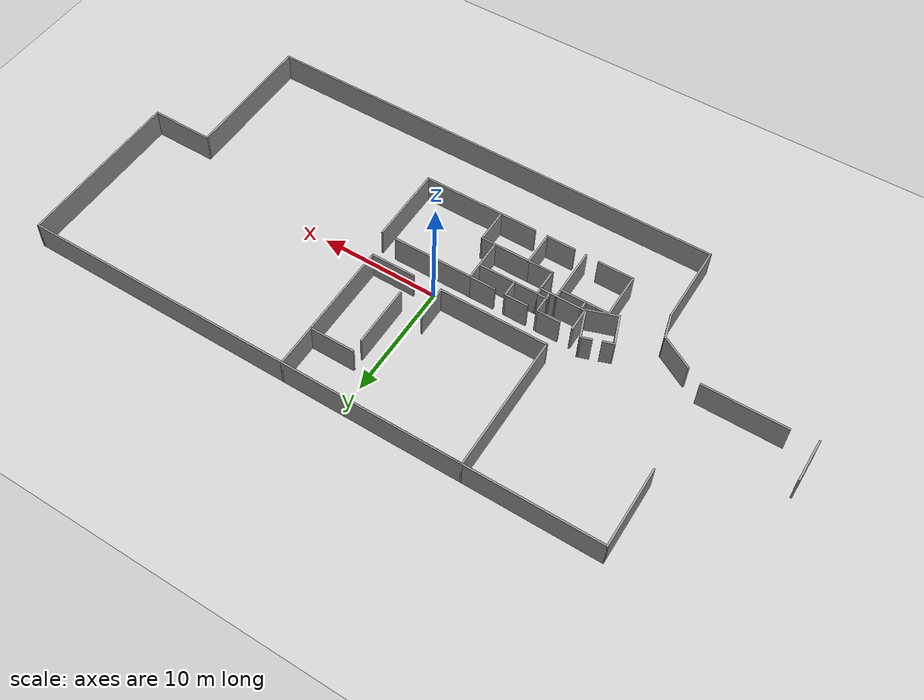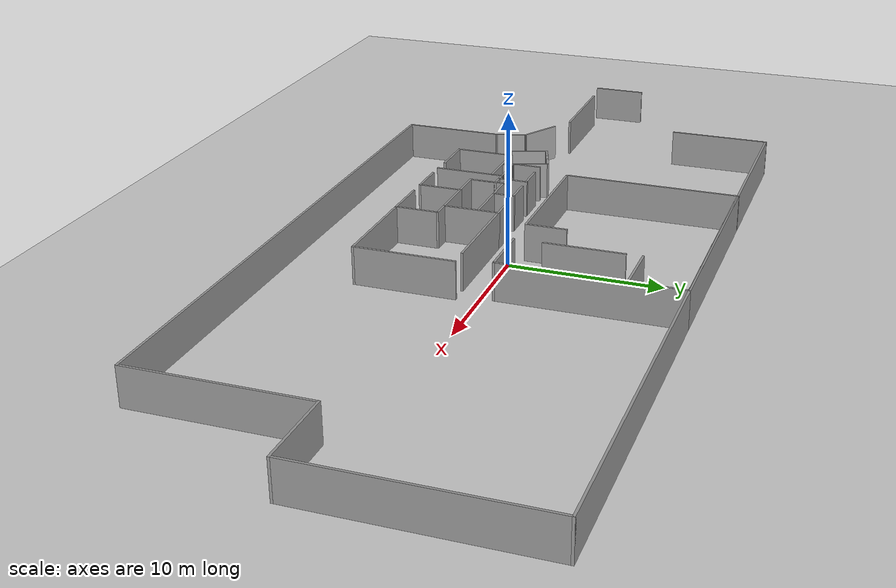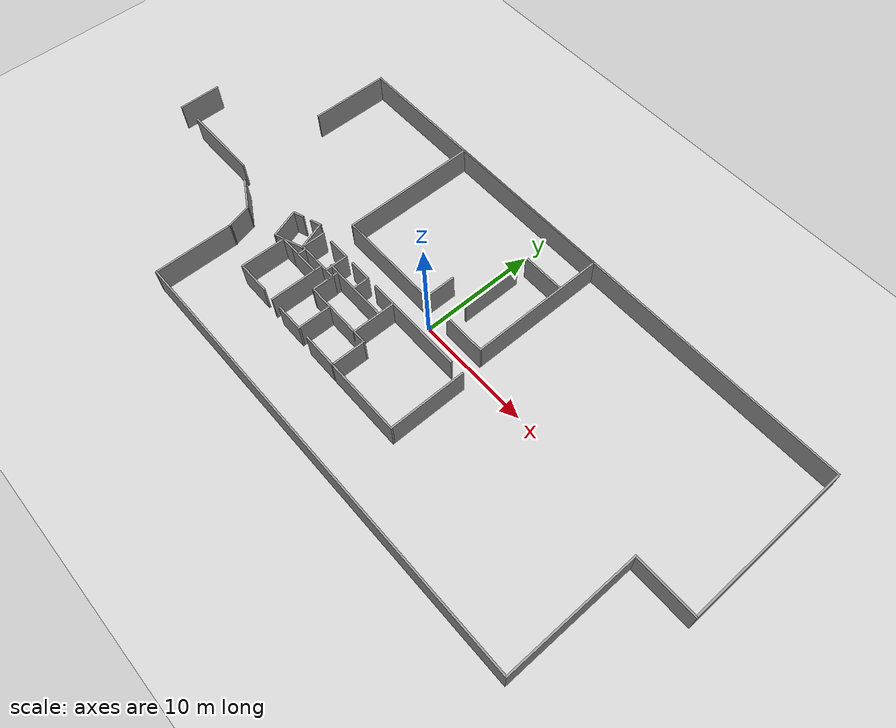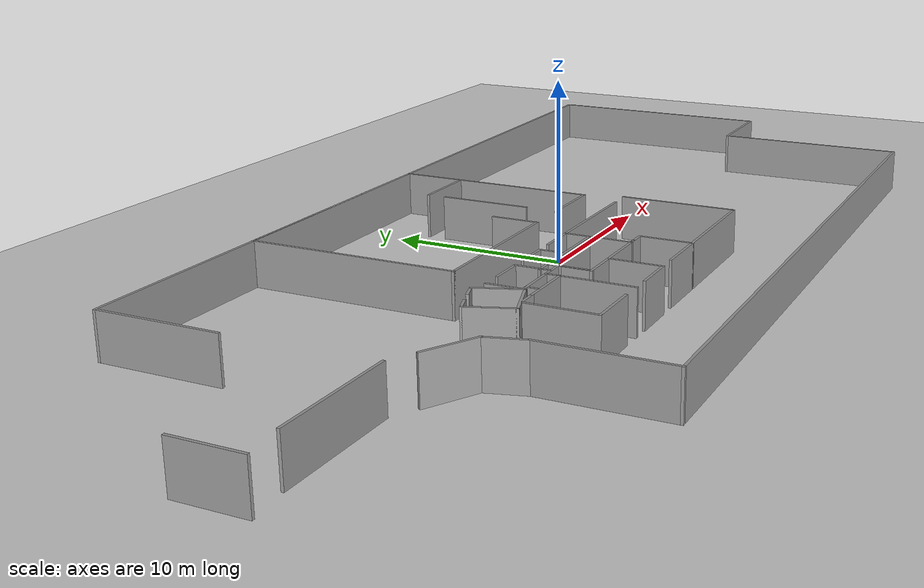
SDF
<sdf version="1.6">
 <world name="default">
  <model name="ground_plane">
   <static>1</static>
   <link name="link">
    <collision name="collision">
     <geometry><plane><normal>0 0 1</normal><size>100 100</size></plane></geometry>
     <surface><friction><ode><mu>100</mu><mu2>50</mu2></ode></friction></surface>
    </collision>
    <visual name="visual">
     <cast_shadows>0</cast_shadows>
     <geometry><plane><normal>0 0 1</normal><size>100 100</size></plane></geometry>
     <material>
      <script><uri>file://media/materials/scripts/gazebo.material</uri><name>Gazebo/Grey</name></script>
     </material>
    </visual>
   </link>
  </model>
  <model name="Floor3Perimeter">
   <link name="Wall_0">
    <pose>-20.4275 9.45 0 0 -0 1.5708</pose>
    <visual name="Wall_0_Visual">
     <pose>0 0 1.25 0 -0 0</pose>
     <geometry><box><size>6.858 0.15 2.5</size></box></geometry>
     <material>
      <script><uri>file://media/materials/scripts/gazebo.material</uri><name>Gazebo/Grey</name></script>
      <ambient>1 1 1 1</ambient>
      <shader type="pixel"/>
     </material>
     <meta><layer>0</layer></meta>
    </visual>
    <collision name="Wall_0_Collision">
     <pose>0 0 1.25 0 -0 0</pose>
     <geometry><box><size>6.858 0.15 2.5</size></box></geometry>
     <surface>
      <friction>
       <ode><mu>1</mu><mu2>1</mu2><fdir1>0 0 0</fdir1><slip1>0</slip1><slip2>0</slip2></ode>
       <torsional>
        <coefficient>1</coefficient>
        <patch_radius>0</patch_radius>
        <surface_radius>0</surface_radius>
        <use_patch_radius>1</use_patch_radius>
        <ode><slip>0</slip></ode>
       </torsional>
      </friction>
      <bounce><restitution_coefficient>0</restitution_coefficient><threshold>1e+06</threshold></bounce>
      <contact>
       <collide_without_contact>0</collide_without_contact>
       <collide_without_contact_bitmask>1</collide_without_contact_bitmask>
       <collide_bitmask>1</collide_bitmask>
       <ode>
        <soft_cfm>0</soft_cfm>
        <soft_erp>0.2</soft_erp>
        <kp>1e+13</kp>
        <kd>1</kd>
        <max_vel>0.01</max_vel>
        <min_depth>0</min_depth>
       </ode>
       <bullet>
        <split_impulse>1</split_impulse>
        <split_impulse_penetration_threshold>-0.01</split_impulse_penetration_threshold>
        <soft_cfm>0</soft_cfm>
        <soft_erp>0.2</soft_erp>
        <kp>1e+13</kp>
        <kd>1</kd>
       </bullet>
      </contact>
     </surface>
    </collision>
   </link>
   <link name="Wall_1">
    <pose>4.26245 12.804 0 0 -0 0</pose>
    <visual name="Wall_1_Visual">
     <pose>0 0 1.25 0 -0 0</pose>
     <geometry><box><size>49.53 0.15 2.5</size></box></geometry>
     <material>
      <script><uri>file://media/materials/scripts/gazebo.material</uri><name>Gazebo/Grey</name></script>
      <ambient>1 1 1 1</ambient>
      <shader type="pixel"/>
     </material>
     <meta><layer>0</layer></meta>
    </visual>
    <collision name="Wall_1_Collision">
     <pose>0 0 1.25 0 -0 0</pose>
     <geometry><box><size>49.53 0.15 2.5</size></box></geometry>
     <surface>
      <friction>
       <ode><mu>1</mu><mu2>1</mu2><fdir1>0 0 0</fdir1><slip1>0</slip1><slip2>0</slip2></ode>
       <torsional>
        <coefficient>1</coefficient>
        <patch_radius>0</patch_radius>
        <surface_radius>0</surface_radius>
        <use_patch_radius>1</use_patch_radius>
        <ode><slip>0</slip></ode>
       </torsional>
      </friction>
      <bounce><restitution_coefficient>0</restitution_coefficient><threshold>1e+06</threshold></bounce>
      <contact>
       <collide_without_contact>0</collide_without_contact>
       <collide_without_contact_bitmask>1</collide_without_contact_bitmask>
       <collide_bitmask>1</collide_bitmask>
       <ode>
        <soft_cfm>0</soft_cfm>
        <soft_erp>0.2</soft_erp>
        <kp>1e+13</kp>
        <kd>1</kd>
        <max_vel>0.01</max_vel>
        <min_depth>0</min_depth>
       </ode>
       <bullet>
        <split_impulse>1</split_impulse>
        <split_impulse_penetration_threshold>-0.01</split_impulse_penetration_threshold>
        <soft_cfm>0</soft_cfm>
        <soft_erp>0.2</soft_erp>
        <kp>1e+13</kp>
        <kd>1</kd>
       </bullet>
      </contact>
     </surface>
    </collision>
   </link>
   <link name="Wall_10">
    <pose>-23.4985 -1.81856 0 0 -0 3.14159</pose>
    <visual name="Wall_10_Visual">
     <pose>0 0 1.25 0 -0 0</pose>
     <geometry><box><size>6.858 0.15 2.5</size></box></geometry>
     <material>
      <script><uri>file://media/materials/scripts/gazebo.material</uri><name>Gazebo/Grey</name></script>
      <ambient>1 1 1 1</ambient>
      <shader type="pixel"/>
     </material>
     <meta><layer>0</layer></meta>
    </visual>
    <collision name="Wall_10_Collision">
     <pose>0 0 1.25 0 -0 0</pose>
     <geometry><box><size>6.858 0.15 2.5</size></box></geometry>
     <surface>
      <friction>
       <ode><mu>1</mu><mu2>1</mu2><fdir1>0 0 0</fdir1><slip1>0</slip1><slip2>0</slip2></ode>
       <torsional>
        <coefficient>1</coefficient>
        <patch_radius>0</patch_radius>
        <surface_radius>0</surface_radius>
        <use_patch_radius>1</use_patch_radius>
        <ode><slip>0</slip></ode>
       </torsional>
      </friction>
      <bounce><restitution_coefficient>0</restitution_coefficient><threshold>1e+06</threshold></bounce>
      <contact>
       <collide_without_contact>0</collide_without_contact>
       <collide_without_contact_bitmask>1</collide_without_contact_bitmask>
       <collide_bitmask>1</collide_bitmask>
       <ode>
        <soft_cfm>0</soft_cfm>
        <soft_erp>0.2</soft_erp>
        <kp>1e+13</kp>
        <kd>1</kd>
        <max_vel>0.01</max_vel>
        <min_depth>0</min_depth>
       </ode>
       <bullet>
        <split_impulse>1</split_impulse>
        <split_impulse_penetration_threshold>-0.01</split_impulse_penetration_threshold>
        <soft_cfm>0</soft_cfm>
        <soft_erp>0.2</soft_erp>
        <kp>1e+13</kp>
        <kd>1</kd>
       </bullet>
      </contact>
     </surface>
    </collision>
   </link>
   <link name="Wall_14">
    <pose>-28.9525 -0.282482 0 0 -0 1.5708</pose>
    <inertial>
     <inertia><ixx>0</ixx><ixy>0</ixy><ixz>0</ixz><iyy>0</iyy><iyz>0</iyz><izz>0</izz></inertia>
     <mass>0</mass>
    </inertial>
    <visual name="Wall_14_Visual">
     <pose>0 0 1.25 0 -0 0</pose>
     <geometry><box><size>3.66308 0.15 2.5</size></box></geometry>
     <material>
      <script><uri>file://media/materials/scripts/gazebo.material</uri><name>Gazebo/Grey</name></script>
      <ambient>1 1 1 1</ambient>
      <shader type="pixel"/>
     </material>
     <meta><layer>0</layer></meta>
    </visual>
    <collision name="Wall_14_Collision">
     <pose>0 0 1.25 0 -0 0</pose>
     <geometry><box><size>3.66308 0.15 2.5</size></box></geometry>
     <surface>
      <friction>
       <ode><mu>1</mu><mu2>1</mu2><fdir1>0 0 0</fdir1><slip1>0</slip1><slip2>0</slip2></ode>
       <torsional>
        <coefficient>1</coefficient>
        <patch_radius>0</patch_radius>
        <surface_radius>0</surface_radius>
        <use_patch_radius>1</use_patch_radius>
        <ode><slip>0</slip></ode>
       </torsional>
      </friction>
      <bounce><restitution_coefficient>0</restitution_coefficient><threshold>1e+06</threshold></bounce>
      <contact>
       <collide_without_contact>0</collide_without_contact>
       <collide_without_contact_bitmask>1</collide_without_contact_bitmask>
       <collide_bitmask>1</collide_bitmask>
       <ode>
        <soft_cfm>0</soft_cfm>
        <soft_erp>0.2</soft_erp>
        <kp>1e+13</kp>
        <kd>1</kd>
        <max_vel>0.01</max_vel>
        <min_depth>0</min_depth>
       </ode>
       <bullet>
        <split_impulse>1</split_impulse>
        <split_impulse_penetration_threshold>-0.01</split_impulse_penetration_threshold>
        <soft_cfm>0</soft_cfm>
        <soft_erp>0.2</soft_erp>
        <kp>1e+13</kp>
        <kd>1</kd>
       </bullet>
      </contact>
     </surface>
    </collision>
   </link>
   <link name="Wall_2">
    <pose>28.9524 5.64 0 0 0 -1.5708</pose>
    <visual name="Wall_2_Visual">
     <pose>0 0 1.25 0 -0 0</pose>
     <geometry><box><size>14.478 0.15 2.5</size></box></geometry>
     <material>
      <script><uri>file://media/materials/scripts/gazebo.material</uri><name>Gazebo/Grey</name></script>
      <ambient>1 1 1 1</ambient>
      <shader type="pixel"/>
     </material>
     <meta><layer>0</layer></meta>
    </visual>
    <collision name="Wall_2_Collision">
     <pose>0 0 1.25 0 -0 0</pose>
     <geometry><box><size>14.478 0.15 2.5</size></box></geometry>
     <surface>
      <friction>
       <ode><mu>1</mu><mu2>1</mu2><fdir1>0 0 0</fdir1><slip1>0</slip1><slip2>0</slip2></ode>
       <torsional>
        <coefficient>1</coefficient>
        <patch_radius>0</patch_radius>
        <surface_radius>0</surface_radius>
        <use_patch_radius>1</use_patch_radius>
        <ode><slip>0</slip></ode>
       </torsional>
      </friction>
      <bounce><restitution_coefficient>0</restitution_coefficient><threshold>1e+06</threshold></bounce>
      <contact>
       <collide_without_contact>0</collide_without_contact>
       <collide_without_contact_bitmask>1</collide_without_contact_bitmask>
       <collide_bitmask>1</collide_bitmask>
       <ode>
        <soft_cfm>0</soft_cfm>
        <soft_erp>0.2</soft_erp>
        <kp>1e+13</kp>
        <kd>1</kd>
        <max_vel>0.01</max_vel>
        <min_depth>0</min_depth>
       </ode>
       <bullet>
        <split_impulse>1</split_impulse>
        <split_impulse_penetration_threshold>-0.01</split_impulse_penetration_threshold>
        <soft_cfm>0</soft_cfm>
        <soft_erp>0.2</soft_erp>
        <kp>1e+13</kp>
        <kd>1</kd>
       </bullet>
      </contact>
     </surface>
    </collision>
   </link>
   <link name="Wall_3">
    <pose>26.3605 -1.524 0 0 -0 3.14159</pose>
    <visual name="Wall_3_Visual">
     <pose>0 0 1.25 0 -0 0</pose>
     <geometry><box><size>5.334 0.15 2.5</size></box></geometry>
     <material>
      <script><uri>file://media/materials/scripts/gazebo.material</uri><name>Gazebo/Grey</name></script>
      <ambient>1 1 1 1</ambient>
      <shader type="pixel"/>
     </material>
     <meta><layer>0</layer></meta>
    </visual>
    <collision name="Wall_3_Collision">
     <pose>0 0 1.25 0 -0 0</pose>
     <geometry><box><size>5.334 0.15 2.5</size></box></geometry>
     <surface>
      <friction>
       <ode><mu>1</mu><mu2>1</mu2><fdir1>0 0 0</fdir1><slip1>0</slip1><slip2>0</slip2></ode>
       <torsional>
        <coefficient>1</coefficient>
        <patch_radius>0</patch_radius>
        <surface_radius>0</surface_radius>
        <use_patch_radius>1</use_patch_radius>
        <ode><slip>0</slip></ode>
       </torsional>
      </friction>
      <bounce><restitution_coefficient>0</restitution_coefficient><threshold>1e+06</threshold></bounce>
      <contact>
       <collide_without_contact>0</collide_without_contact>
       <collide_without_contact_bitmask>1</collide_without_contact_bitmask>
       <collide_bitmask>1</collide_bitmask>
       <ode>
        <soft_cfm>0</soft_cfm>
        <soft_erp>0.2</soft_erp>
        <kp>1e+13</kp>
        <kd>1</kd>
        <max_vel>0.01</max_vel>
        <min_depth>0</min_depth>
       </ode>
       <bullet>
        <split_impulse>1</split_impulse>
        <split_impulse_penetration_threshold>-0.01</split_impulse_penetration_threshold>
        <soft_cfm>0</soft_cfm>
        <soft_erp>0.2</soft_erp>
        <kp>1e+13</kp>
        <kd>1</kd>
       </bullet>
      </contact>
     </surface>
    </collision>
   </link>
   <link name="Wall_4">
    <pose>23.7685 -7.164 0 0 0 -1.5708</pose>
    <visual name="Wall_4_Visual">
     <pose>0 0 1.25 0 -0 0</pose>
     <geometry><box><size>11.43 0.15 2.5</size></box></geometry>
     <material>
      <script><uri>file://media/materials/scripts/gazebo.material</uri><name>Gazebo/Grey</name></script>
      <ambient>1 1 1 1</ambient>
      <shader type="pixel"/>
     </material>
     <meta><layer>0</layer></meta>
    </visual>
    <collision name="Wall_4_Collision">
     <pose>0 0 1.25 0 -0 0</pose>
     <geometry><box><size>11.43 0.15 2.5</size></box></geometry>
     <surface>
      <friction>
       <ode><mu>1</mu><mu2>1</mu2><fdir1>0 0 0</fdir1><slip1>0</slip1><slip2>0</slip2></ode>
       <torsional>
        <coefficient>1</coefficient>
        <patch_radius>0</patch_radius>
        <surface_radius>0</surface_radius>
        <use_patch_radius>1</use_patch_radius>
        <ode><slip>0</slip></ode>
       </torsional>
      </friction>
      <bounce><restitution_coefficient>0</restitution_coefficient><threshold>1e+06</threshold></bounce>
      <contact>
       <collide_without_contact>0</collide_without_contact>
       <collide_without_contact_bitmask>1</collide_without_contact_bitmask>
       <collide_bitmask>1</collide_bitmask>
       <ode>
        <soft_cfm>0</soft_cfm>
        <soft_erp>0.2</soft_erp>
        <kp>1e+13</kp>
        <kd>1</kd>
        <max_vel>0.01</max_vel>
        <min_depth>0</min_depth>
       </ode>
       <bullet>
        <split_impulse>1</split_impulse>
        <split_impulse_penetration_threshold>-0.01</split_impulse_penetration_threshold>
        <soft_cfm>0</soft_cfm>
        <soft_erp>0.2</soft_erp>
        <kp>1e+13</kp>
        <kd>1</kd>
       </bullet>
      </contact>
     </surface>
    </collision>
   </link>
   <link name="Wall_5">
    <pose>4.03145 -12.804 0 0 -0 3.14159</pose>
    <visual name="Wall_5_Visual">
     <pose>0 0 1.25 0 -0 0</pose>
     <geometry><box><size>39.624 0.15 2.5</size></box></geometry>
     <material>
      <script><uri>file://media/materials/scripts/gazebo.material</uri><name>Gazebo/Grey</name></script>
      <ambient>1 1 1 1</ambient>
      <shader type="pixel"/>
     </material>
     <meta><layer>0</layer></meta>
    </visual>
    <collision name="Wall_5_Collision">
     <pose>0 0 1.25 0 -0 0</pose>
     <geometry><box><size>39.624 0.15 2.5</size></box></geometry>
     <surface>
      <friction>
       <ode><mu>1</mu><mu2>1</mu2><fdir1>0 0 0</fdir1><slip1>0</slip1><slip2>0</slip2></ode>
       <torsional>
        <coefficient>1</coefficient>
        <patch_radius>0</patch_radius>
        <surface_radius>0</surface_radius>
        <use_patch_radius>1</use_patch_radius>
        <ode><slip>0</slip></ode>
       </torsional>
      </friction>
      <bounce><restitution_coefficient>0</restitution_coefficient><threshold>1e+06</threshold></bounce>
      <contact>
       <collide_without_contact>0</collide_without_contact>
       <collide_without_contact_bitmask>1</collide_without_contact_bitmask>
       <collide_bitmask>1</collide_bitmask>
       <ode>
        <soft_cfm>0</soft_cfm>
        <soft_erp>0.2</soft_erp>
        <kp>1e+13</kp>
        <kd>1</kd>
        <max_vel>0.01</max_vel>
        <min_depth>0</min_depth>
       </ode>
       <bullet>
        <split_impulse>1</split_impulse>
        <split_impulse_penetration_threshold>-0.01</split_impulse_penetration_threshold>
        <soft_cfm>0</soft_cfm>
        <soft_erp>0.2</soft_erp>
        <kp>1e+13</kp>
        <kd>1</kd>
       </bullet>
      </contact>
     </surface>
    </collision>
   </link>
   <link name="Wall_6">
    <pose>-15.7055 -9.45 0 0 -0 1.5708</pose>
    <visual name="Wall_6_Visual">
     <pose>0 0 1.25 0 -0 0</pose>
     <geometry><box><size>6.858 0.15 2.5</size></box></geometry>
     <material>
      <script><uri>file://media/materials/scripts/gazebo.material</uri><name>Gazebo/Grey</name></script>
      <ambient>1 1 1 1</ambient>
      <shader type="pixel"/>
     </material>
     <meta><layer>0</layer></meta>
    </visual>
    <collision name="Wall_6_Collision">
     <pose>0 0 1.25 0 -0 0</pose>
     <geometry><box><size>6.858 0.15 2.5</size></box></geometry>
     <surface>
      <friction>
       <ode><mu>1</mu><mu2>1</mu2><fdir1>0 0 0</fdir1><slip1>0</slip1><slip2>0</slip2></ode>
       <torsional>
        <coefficient>1</coefficient>
        <patch_radius>0</patch_radius>
        <surface_radius>0</surface_radius>
        <use_patch_radius>1</use_patch_radius>
        <ode><slip>0</slip></ode>
       </torsional>
      </friction>
      <bounce><restitution_coefficient>0</restitution_coefficient><threshold>1e+06</threshold></bounce>
      <contact>
       <collide_without_contact>0</collide_without_contact>
       <collide_without_contact_bitmask>1</collide_without_contact_bitmask>
       <collide_bitmask>1</collide_bitmask>
       <ode>
        <soft_cfm>0</soft_cfm>
        <soft_erp>0.2</soft_erp>
        <kp>1e+13</kp>
        <kd>1</kd>
        <max_vel>0.01</max_vel>
        <min_depth>0</min_depth>
       </ode>
       <bullet>
        <split_impulse>1</split_impulse>
        <split_impulse_penetration_threshold>-0.01</split_impulse_penetration_threshold>
        <soft_cfm>0</soft_cfm>
        <soft_erp>0.2</soft_erp>
        <kp>1e+13</kp>
        <kd>1</kd>
       </bullet>
      </contact>
     </surface>
    </collision>
   </link>
   <link name="Wall_7">
    <pose>-15.9773 -5.08178 0 0 -0 1.8326</pose>
    <visual name="Wall_7_Visual">
     <pose>0 0 1.25 0 -0 0</pose>
     <geometry><box><size>2.25 0.15 2.5</size></box></geometry>
     <material>
      <script><uri>file://media/materials/scripts/gazebo.material</uri><name>Gazebo/Grey</name></script>
      <ambient>1 1 1 1</ambient>
      <shader type="pixel"/>
     </material>
     <meta><layer>0</layer></meta>
    </visual>
    <collision name="Wall_7_Collision">
     <pose>0 0 1.25 0 -0 0</pose>
     <geometry><box><size>2.25 0.15 2.5</size></box></geometry>
     <surface>
      <friction>
       <ode><mu>1</mu><mu2>1</mu2><fdir1>0 0 0</fdir1><slip1>0</slip1><slip2>0</slip2></ode>
       <torsional>
        <coefficient>1</coefficient>
        <patch_radius>0</patch_radius>
        <surface_radius>0</surface_radius>
        <use_patch_radius>1</use_patch_radius>
        <ode><slip>0</slip></ode>
       </torsional>
      </friction>
      <bounce><restitution_coefficient>0</restitution_coefficient><threshold>1e+06</threshold></bounce>
      <contact>
       <collide_without_contact>0</collide_without_contact>
       <collide_without_contact_bitmask>1</collide_without_contact_bitmask>
       <collide_bitmask>1</collide_bitmask>
       <ode>
        <soft_cfm>0</soft_cfm>
        <soft_erp>0.2</soft_erp>
        <kp>1e+13</kp>
        <kd>1</kd>
        <max_vel>0.01</max_vel>
        <min_depth>0</min_depth>
       </ode>
       <bullet>
        <split_impulse>1</split_impulse>
        <split_impulse_penetration_threshold>-0.01</split_impulse_penetration_threshold>
        <soft_cfm>0</soft_cfm>
        <soft_erp>0.2</soft_erp>
        <kp>1e+13</kp>
        <kd>1</kd>
       </bullet>
      </contact>
     </surface>
    </collision>
   </link>
   <link name="Wall_8">
    <pose>-17.5039 -3.34306 0 0 -0 2.61799</pose>
    <visual name="Wall_8_Visual">
     <pose>0 0 1.25 0 -0 0</pose>
     <geometry><box><size>3.048 0.15 2.5</size></box></geometry>
     <material>
      <script><uri>file://media/materials/scripts/gazebo.material</uri><name>Gazebo/Grey</name></script>
      <ambient>1 1 1 1</ambient>
      <shader type="pixel"/>
     </material>
     <meta><layer>0</layer></meta>
    </visual>
    <collision name="Wall_8_Collision">
     <pose>0 0 1.25 0 -0 0</pose>
     <geometry><box><size>3.048 0.15 2.5</size></box></geometry>
     <surface>
      <friction>
       <ode><mu>1</mu><mu2>1</mu2><fdir1>0 0 0</fdir1><slip1>0</slip1><slip2>0</slip2></ode>
       <torsional>
        <coefficient>1</coefficient>
        <patch_radius>0</patch_radius>
        <surface_radius>0</surface_radius>
        <use_patch_radius>1</use_patch_radius>
        <ode><slip>0</slip></ode>
       </torsional>
      </friction>
      <bounce><restitution_coefficient>0</restitution_coefficient><threshold>1e+06</threshold></bounce>
      <contact>
       <collide_without_contact>0</collide_without_contact>
       <collide_without_contact_bitmask>1</collide_without_contact_bitmask>
       <collide_bitmask>1</collide_bitmask>
       <ode>
        <soft_cfm>0</soft_cfm>
        <soft_erp>0.2</soft_erp>
        <kp>1e+13</kp>
        <kd>1</kd>
        <max_vel>0.01</max_vel>
        <min_depth>0</min_depth>
       </ode>
       <bullet>
        <split_impulse>1</split_impulse>
        <split_impulse_penetration_threshold>-0.01</split_impulse_penetration_threshold>
        <soft_cfm>0</soft_cfm>
        <soft_erp>0.2</soft_erp>
        <kp>1e+13</kp>
        <kd>1</kd>
       </bullet>
      </contact>
     </surface>
    </collision>
   </link>
   <static>1</static>
   <pose>-0.7527 -0.36372 0 0 -0 0</pose>
  </model>
  <model name="307">
   <pose>-2.5561 6.61201 0 0 -0 0</pose>
   <link name="Wall_25">
    <collision name="Wall_25_Collision">
     <geometry><box><size>11.811 0.15 2.5</size></box></geometry>
     <pose>0 0 1.25 0 -0 0</pose>
    </collision>
    <visual name="Wall_25_Visual">
     <pose>0 0 1.25 0 -0 0</pose>
     <geometry><box><size>11.811 0.15 2.5</size></box></geometry>
     <material>
      <script><uri>file://media/materials/scripts/gazebo.material</uri><name>Gazebo/Grey</name></script>
      <ambient>1 1 1 1</ambient>
     </material>
     <meta><layer>0</layer></meta>
    </visual>
    <pose>-7.545 0 0 0 -0 1.5708</pose>
   </link>
   <link name="Wall_26">
    <collision name="Wall_26_Collision">
     <geometry><box><size>15.24 0.15 2.5</size></box></geometry>
     <pose>0 0 1.25 0 -0 0</pose>
    </collision>
    <visual name="Wall_26_Visual">
     <pose>0 0 1.25 0 -0 0</pose>
     <geometry><box><size>15.24 0.15 2.5</size></box></geometry>
     <material>
      <script><uri>file://media/materials/scripts/gazebo.material</uri><name>Gazebo/Grey</name></script>
      <ambient>1 1 1 1</ambient>
     </material>
     <meta><layer>0</layer></meta>
    </visual>
    <pose>-0 5.8305 0 0 -0 0</pose>
   </link>
   <link name="Wall_27">
    <collision name="Wall_27_Collision">
     <geometry><box><size>11.81 0.15 2.5</size></box></geometry>
     <pose>0 0 1.25 0 -0 0</pose>
    </collision>
    <visual name="Wall_27_Visual">
     <pose>0 0 1.25 0 -0 0</pose>
     <geometry><box><size>11.81 0.15 2.5</size></box></geometry>
     <material>
      <script><uri>file://media/materials/scripts/gazebo.material</uri><name>Gazebo/Grey</name></script>
      <ambient>1 1 1 1</ambient>
     </material>
     <meta><layer>0</layer></meta>
    </visual>
    <pose>7.545 0.0005 0 0 -0 -1.5708</pose>
   </link>
   <link name="Wall_28">
    <collision name="Wall_28_Collision">
     <geometry><box><size>3.81 0.15 2.5</size></box></geometry>
     <pose>0 0 1.25 0 -0 0</pose>
    </collision>
    <visual name="Wall_28_Visual">
     <pose>0 0 1.25 0 -0 0</pose>
     <geometry><box><size>3.81 0.15 2.5</size></box></geometry>
     <material>
      <script><uri>file://media/materials/scripts/gazebo.material</uri><name>Gazebo/Grey</name></script>
      <ambient>1 1 1 1</ambient>
     </material>
     <meta><layer>0</layer></meta>
    </visual>
    <pose>5.715 -5.8295 0 0 -0 3.14159</pose>
   </link>
   <link name="Wall_30">
    <collision name="Wall_30_Collision">
     <geometry><box><size>9.144 0.15 2.5</size></box></geometry>
     <pose>0 0 1.25 0 -0 0</pose>
    </collision>
    <visual name="Wall_30_Visual">
     <pose>0 0 1.25 0 -0 0</pose>
     <geometry><box><size>9.144 0.15 2.5</size></box></geometry>
     <material>
      <script><uri>file://media/materials/scripts/gazebo.material</uri><name>Gazebo/Grey</name></script>
      <ambient>1 1 1 1</ambient>
     </material>
     <meta><layer>0</layer></meta>
    </visual>
    <pose>-3.048 -5.8305 0 0 -0 0</pose>
   </link>
   <link name="Wall_32">
    <collision name="Wall_32_Collision">
     <geometry><box><size>2.75 0.15 2.5</size></box></geometry>
     <pose>0 0 1.25 0 -0 0</pose>
    </collision>
    <visual name="Wall_32_Visual">
     <pose>0 0 1.25 0 -0 0</pose>
     <geometry><box><size>2.75 0.15 2.5</size></box></geometry>
     <material>
      <script><uri>file://media/materials/scripts/gazebo.material</uri><name>Gazebo/Grey</name></script>
      <ambient>1 1 1 1</ambient>
     </material>
     <meta><layer>0</layer></meta>
    </visual>
    <pose>1.449 -4.5305 0 0 -0 1.5708</pose>
   </link>
   <link name="Wall_34">
    <collision name="Wall_34_Collision">
     <geometry><box><size>3.81 0.15 2.5</size></box></geometry>
     <pose>0 0 1.25 0 -0 0</pose>
    </collision>
    <visual name="Wall_34_Visual">
     <pose>0 0 1.25 0 -0 0</pose>
     <geometry><box><size>3.81 0.15 2.5</size></box></geometry>
     <material>
      <script><uri>file://media/materials/scripts/gazebo.material</uri><name>Gazebo/Grey</name></script>
      <ambient>1 1 1 1</ambient>
     </material>
     <meta><layer>0</layer></meta>
    </visual>
    <pose>5.67163 2.25024 0 0 -0 3.14159</pose>
   </link>
   <link name="Wall_36">
    <collision name="Wall_36_Collision">
     <geometry><box><size>5.25 0.15 2.5</size></box></geometry>
     <pose>0 0 1.25 0 -0 0</pose>
    </collision>
    <visual name="Wall_36_Visual">
     <pose>0 0 1.25 0 -0 0</pose>
     <geometry><box><size>5.25 0.15 2.5</size></box></geometry>
     <material>
      <script><uri>file://media/materials/scripts/gazebo.material</uri><name>Gazebo/Grey</name></script>
      <ambient>1 1 1 1</ambient>
     </material>
     <meta><layer>0</layer></meta>
    </visual>
    <pose>3.84163 -1.39976 0 0 -0 -1.5708</pose>
   </link>
   <static>1</static>
  </model>
  <model name="WTF">
   <pose>-3.50173 -4.73 0 0 -0 0</pose>
   <link name="Wall_1">
    <collision name="Wall_1_Collision">
     <geometry><box><size>6.69221 0.15 2.5</size></box></geometry>
     <pose>0 0 1.25 0 -0 0</pose>
    </collision>
    <visual name="Wall_1_Visual">
     <pose>0 0 1.25 0 -0 0</pose>
     <geometry><box><size>6.69221 0.15 2.5</size></box></geometry>
     <material>
      <script><uri>file://media/materials/scripts/gazebo.material</uri><name>Gazebo/Grey</name></script>
      <ambient>1 1 1 1</ambient>
     </material>
     <meta><layer>0</layer></meta>
    </visual>
    <pose>9.07999 0.000112 0 0 -0 -1.5708</pose>
   </link>
   <link name="Wall_10">
    <collision name="Wall_10_Collision">
     <geometry><box><size>4.24203 0.15 2.5</size></box></geometry>
     <pose>0 0 1.25 0 -0 0</pose>
    </collision>
    <visual name="Wall_10_Visual">
     <pose>0 0 1.25 0 -0 0</pose>
     <geometry><box><size>4.24203 0.15 2.5</size></box></geometry>
     <material>
      <script><uri>file://media/materials/scripts/gazebo.material</uri><name>Gazebo/Grey</name></script>
      <ambient>1 1 1 1</ambient>
     </material>
     <meta><layer>0</layer></meta>
    </visual>
    <pose>0.325989 -0.405783 0 0 -0 3.14159</pose>
   </link>
   <link name="Wall_11">
    <collision name="Wall_11_Collision">
     <geometry><box><size>3 0.15 2.5</size></box></geometry>
     <pose>0 0 1.25 0 -0 0</pose>
    </collision>
    <visual name="Wall_11_Visual">
     <pose>0 0 1.25 0 -0 0</pose>
     <geometry><box><size>3 0.15 2.5</size></box></geometry>
     <material>
      <script><uri>file://media/materials/scripts/gazebo.material</uri><name>Gazebo/Grey</name></script>
      <ambient>1 1 1 1</ambient>
     </material>
     <meta><layer>0</layer></meta>
    </visual>
    <pose>-1.72001 -1.83078 0 0 -0 -1.5708</pose>
   </link>
   <link name="Wall_13">
    <collision name="Wall_13_Collision">
     <geometry><box><size>3.14204 0.15 2.5</size></box></geometry>
     <pose>0 0 1.25 0 -0 0</pose>
    </collision>
    <visual name="Wall_13_Visual">
     <pose>0 0 1.25 0 -0 0</pose>
     <geometry><box><size>3.14204 0.15 2.5</size></box></geometry>
     <material>
      <script><uri>file://media/materials/scripts/gazebo.material</uri><name>Gazebo/Grey</name></script>
      <ambient>1 1 1 1</ambient>
     </material>
     <meta><layer>0</layer></meta>
    </visual>
    <pose>0.87599 -3.26339 0 0 -0 3.13651</pose>
   </link>
   <link name="Wall_15">
    <collision name="Wall_15_Collision">
     <geometry><box><size>2.5 0.15 2.5</size></box></geometry>
     <pose>0 0 1.25 0 -0 0</pose>
    </collision>
    <visual name="Wall_15_Visual">
     <pose>0 0 1.25 0 -0 0</pose>
     <geometry><box><size>2.5 0.15 2.5</size></box></geometry>
     <material>
      <script><uri>file://media/materials/scripts/gazebo.material</uri><name>Gazebo/Grey</name></script>
      <ambient>1 1 1 1</ambient>
     </material>
     <meta><layer>0</layer></meta>
    </visual>
    <pose>-2.89501 -3.25578 0 0 -0 3.14159</pose>
   </link>
   <link name="Wall_17">
    <collision name="Wall_17_Collision">
     <geometry><box><size>2.2 0.15 2.5</size></box></geometry>
     <pose>0 0 1.25 0 -0 0</pose>
    </collision>
    <visual name="Wall_17_Visual">
     <pose>0 0 1.25 0 -0 0</pose>
     <geometry><box><size>2.2 0.15 2.5</size></box></geometry>
     <material>
      <script><uri>file://media/materials/scripts/gazebo.material</uri><name>Gazebo/Grey</name></script>
      <ambient>1 1 1 1</ambient>
     </material>
     <meta><layer>0</layer></meta>
    </visual>
    <pose>-2.74501 -0.405783 0 0 -0 3.14159</pose>
   </link>
   <link name="Wall_18">
    <collision name="Wall_18_Collision">
     <geometry><box><size>1.624 0.15 2.5</size></box></geometry>
     <pose>0 0 1.25 0 -0 0</pose>
    </collision>
    <visual name="Wall_18_Visual">
     <pose>0 0 1.25 0 -0 0</pose>
     <geometry><box><size>1.624 0.15 2.5</size></box></geometry>
     <material>
      <script><uri>file://media/materials/scripts/gazebo.material</uri><name>Gazebo/Grey</name></script>
      <ambient>1 1 1 1</ambient>
     </material>
     <meta><layer>0</layer></meta>
    </visual>
    <pose>-3.77001 0.331217 0 0 -0 1.5708</pose>
   </link>
   <link name="Wall_2">
    <collision name="Wall_2_Collision">
     <geometry><box><size>6.858 0.15 2.5</size></box></geometry>
     <pose>0 0 1.25 0 -0 0</pose>
    </collision>
    <visual name="Wall_2_Visual">
     <pose>0 0 1.25 0 -0 0</pose>
     <geometry><box><size>6.858 0.15 2.5</size></box></geometry>
     <material>
      <script><uri>file://media/materials/scripts/gazebo.material</uri><name>Gazebo/Grey</name></script>
      <ambient>1 1 1 1</ambient>
     </material>
     <meta><layer>0</layer></meta>
    </visual>
    <pose>5.72599 -3.27099 0 0 -0 3.14159</pose>
   </link>
   <link name="Wall_24">
    <collision name="Wall_24_Collision">
     <geometry><box><size>3 0.15 2.5</size></box></geometry>
     <pose>0 0 1.25 0 -0 0</pose>
    </collision>
    <visual name="Wall_24_Visual">
     <pose>0 0 1.25 0 -0 0</pose>
     <geometry><box><size>3 0.15 2.5</size></box></geometry>
     <material>
      <script><uri>file://media/materials/scripts/gazebo.material</uri><name>Gazebo/Grey</name></script>
      <ambient>1 1 1 1</ambient>
     </material>
     <meta><layer>0</layer></meta>
    </visual>
    <pose>-6.55499 0.65449 0 0 -0 3.14159</pose>
   </link>
   <link name="Wall_25">
    <collision name="Wall_25_Collision">
     <geometry><box><size>1.25 0.15 2.5</size></box></geometry>
     <pose>0 0 1.25 0 -0 0</pose>
    </collision>
    <visual name="Wall_25_Visual">
     <pose>0 0 1.25 0 -0 0</pose>
     <geometry><box><size>1.25 0.15 2.5</size></box></geometry>
     <material>
      <script><uri>file://media/materials/scripts/gazebo.material</uri><name>Gazebo/Grey</name></script>
      <ambient>1 1 1 1</ambient>
     </material>
     <meta><layer>0</layer></meta>
    </visual>
    <pose>-8.52999 0.65449 0 0 -0 3.14159</pose>
   </link>
   <link name="Wall_26">
    <collision name="Wall_26_Collision">
     <geometry><box><size>4 0.15 2.5</size></box></geometry>
     <pose>0 0 1.25 0 -0 0</pose>
    </collision>
    <visual name="Wall_26_Visual">
     <pose>0 0 1.25 0 -0 0</pose>
     <geometry><box><size>4 0.15 2.5</size></box></geometry>
     <material>
      <script><uri>file://media/materials/scripts/gazebo.material</uri><name>Gazebo/Grey</name></script>
      <ambient>1 1 1 1</ambient>
     </material>
     <meta><layer>0</layer></meta>
    </visual>
    <pose>-9.07999 -1.27051 0 0 -0 -1.5708</pose>
   </link>
   <link name="Wall_27">
    <collision name="Wall_27_Collision">
     <geometry><box><size>3 0.15 2.5</size></box></geometry>
     <pose>0 0 1.25 0 -0 0</pose>
    </collision>
    <visual name="Wall_27_Visual">
     <pose>0 0 1.25 0 -0 0</pose>
     <geometry><box><size>3 0.15 2.5</size></box></geometry>
     <material>
      <script><uri>file://media/materials/scripts/gazebo.material</uri><name>Gazebo/Grey</name></script>
      <ambient>1 1 1 1</ambient>
     </material>
     <meta><layer>0</layer></meta>
    </visual>
    <pose>-7.65499 -3.19551 0 0 -0 0</pose>
   </link>
   <link name="Wall_29">
    <collision name="Wall_29_Collision">
     <geometry><box><size>6.75 0.15 2.5</size></box></geometry>
     <pose>0 0 1.25 0 -0 0</pose>
    </collision>
    <visual name="Wall_29_Visual">
     <pose>0 0 1.25 0 -0 0</pose>
     <geometry><box><size>6.75 0.15 2.5</size></box></geometry>
     <material>
      <script><uri>file://media/materials/scripts/gazebo.material</uri><name>Gazebo/Grey</name></script>
      <ambient>1 1 1 1</ambient>
     </material>
     <meta><layer>0</layer></meta>
    </visual>
    <pose>4.51799 3.27109 0 0 -0 0</pose>
   </link>
   <link name="Wall_34">
    <collision name="Wall_34_Collision">
     <geometry><box><size>4.75 0.15 2.5</size></box></geometry>
     <pose>0 0 1.25 0 -0 0</pose>
    </collision>
    <visual name="Wall_34_Visual">
     <pose>0 0 1.25 0 -0 0</pose>
     <geometry><box><size>4.75 0.15 2.5</size></box></geometry>
     <material>
      <script><uri>file://media/materials/scripts/gazebo.material</uri><name>Gazebo/Grey</name></script>
      <ambient>1 1 1 1</ambient>
     </material>
     <meta><layer>0</layer></meta>
    </visual>
    <pose>-5.08107 -0.938544 0 0 -0 1.5708</pose>
   </link>
   <link name="Wall_35">
    <collision name="Wall_35_Collision">
     <geometry><box><size>1.5 0.15 2.5</size></box></geometry>
     <pose>0 0 1.25 0 -0 0</pose>
    </collision>
    <visual name="Wall_35_Visual">
     <pose>0 0 1.25 0 -0 0</pose>
     <geometry><box><size>1.5 0.15 2.5</size></box></geometry>
     <material>
      <script><uri>file://media/materials/scripts/gazebo.material</uri><name>Gazebo/Grey</name></script>
      <ambient>1 1 1 1</ambient>
     </material>
     <meta><layer>0</layer></meta>
    </visual>
    <pose>-4.40607 1.36146 0 0 -0 0</pose>
   </link>
   <link name="Wall_36">
    <collision name="Wall_36_Collision">
     <geometry><box><size>1.75 0.15 2.5</size></box></geometry>
     <pose>0 0 1.25 0 -0 0</pose>
    </collision>
    <visual name="Wall_36_Visual">
     <pose>0 0 1.25 0 -0 0</pose>
     <geometry><box><size>1.75 0.15 2.5</size></box></geometry>
     <material>
      <script><uri>file://media/materials/scripts/gazebo.material</uri><name>Gazebo/Grey</name></script>
      <ambient>1 1 1 1</ambient>
     </material>
     <meta><layer>0</layer></meta>
    </visual>
    <pose>-3.73107 0.561456 0 0 -0 -1.5708</pose>
   </link>
   <link name="Wall_38">
    <collision name="Wall_38_Collision">
     <geometry><box><size>1 0.15 2.5</size></box></geometry>
     <pose>0 0 1.25 0 -0 0</pose>
    </collision>
    <visual name="Wall_38_Visual">
     <pose>0 0 1.25 0 -0 0</pose>
     <geometry><box><size>1 0.15 2.5</size></box></geometry>
     <material>
      <script><uri>file://media/materials/scripts/gazebo.material</uri><name>Gazebo/Grey</name></script>
      <ambient>1 1 1 1</ambient>
     </material>
     <meta><layer>0</layer></meta>
    </visual>
    <pose>-3.77001 1.49322 0 0 -0 1.5708</pose>
   </link>
   <link name="Wall_39">
    <collision name="Wall_39_Collision">
     <geometry><box><size>5 0.15 2.5</size></box></geometry>
     <pose>0 0 1.25 0 -0 0</pose>
    </collision>
    <visual name="Wall_39_Visual">
     <pose>0 0 1.25 0 -0 0</pose>
     <geometry><box><size>5 0.15 2.5</size></box></geometry>
     <material>
      <script><uri>file://media/materials/scripts/gazebo.material</uri><name>Gazebo/Grey</name></script>
      <ambient>1 1 1 1</ambient>
     </material>
     <meta><layer>0</layer></meta>
    </visual>
    <pose>-1.34501 1.91822 0 0 -0 0</pose>
   </link>
   <link name="Wall_4">
    <collision name="Wall_4_Collision">
     <geometry><box><size>3.82687 0.15 2.5</size></box></geometry>
     <pose>0 0 1.25 0 -0 0</pose>
    </collision>
    <visual name="Wall_4_Visual">
     <pose>0 0 1.25 0 -0 0</pose>
     <geometry><box><size>3.82687 0.15 2.5</size></box></geometry>
     <material>
      <script><uri>file://media/materials/scripts/gazebo.material</uri><name>Gazebo/Grey</name></script>
      <ambient>1 1 1 1</ambient>
     </material>
     <meta><layer>0</layer></meta>
    </visual>
    <pose>1.21799 1.43265 0 0 -0 1.5708</pose>
   </link>
   <link name="Wall_41">
    <collision name="Wall_41_Collision">
     <geometry><box><size>2.25 0.15 2.5</size></box></geometry>
     <pose>0 0 1.25 0 -0 0</pose>
    </collision>
    <visual name="Wall_41_Visual">
     <pose>0 0 1.25 0 -0 0</pose>
     <geometry><box><size>2.25 0.15 2.5</size></box></geometry>
     <material>
      <script><uri>file://media/materials/scripts/gazebo.material</uri><name>Gazebo/Grey</name></script>
      <ambient>1 1 1 1</ambient>
     </material>
     <meta><layer>0</layer></meta>
    </visual>
    <pose>0.167989 3.27109 0 0 -0 3.14159</pose>
   </link>
   <link name="Wall_44">
    <collision name="Wall_44_Collision">
     <geometry><box><size>1.5 0.15 2.5</size></box></geometry>
     <pose>0 0 1.25 0 -0 0</pose>
    </collision>
    <visual name="Wall_44_Visual">
     <pose>0 0 1.25 0 -0 0</pose>
     <geometry><box><size>1.5 0.15 2.5</size></box></geometry>
     <material>
      <script><uri>file://media/materials/scripts/gazebo.material</uri><name>Gazebo/Grey</name></script>
      <ambient>1 1 1 1</ambient>
     </material>
     <meta><layer>0</layer></meta>
    </visual>
    <pose>-1.83201 2.59609 0 0 -0 -1.5708</pose>
   </link>
   <link name="Wall_46">
    <collision name="Wall_46_Collision">
     <geometry><box><size>2 0.15 2.5</size></box></geometry>
     <pose>0 0 1.25 0 -0 0</pose>
    </collision>
    <visual name="Wall_46_Visual">
     <pose>0 0 1.25 0 -0 0</pose>
     <geometry><box><size>2 0.15 2.5</size></box></geometry>
     <material>
      <script><uri>file://media/materials/scripts/gazebo.material</uri><name>Gazebo/Grey</name></script>
      <ambient>1 1 1 1</ambient>
     </material>
     <meta><layer>0</layer></meta>
    </visual>
    <pose>-2.75701 3.27109 0 0 -0 3.14159</pose>
   </link>
   <link name="Wall_48">
    <collision name="Wall_48_Collision">
     <geometry><box><size>2 0.15 2.5</size></box></geometry>
     <pose>0 0 1.25 0 -0 0</pose>
    </collision>
    <visual name="Wall_48_Visual">
     <pose>0 0 1.25 0 -0 0</pose>
     <geometry><box><size>2 0.15 2.5</size></box></geometry>
     <material>
      <script><uri>file://media/materials/scripts/gazebo.material</uri><name>Gazebo/Grey</name></script>
      <ambient>1 1 1 1</ambient>
     </material>
     <meta><layer>0</layer></meta>
    </visual>
    <pose>-4.53201 2.34609 0 0 -0 -1.5708</pose>
   </link>
   <link name="Wall_50">
    <collision name="Wall_50_Collision">
     <geometry><box><size>1 0.15 2.5</size></box></geometry>
     <pose>0 0 1.25 0 -0 0</pose>
    </collision>
    <visual name="Wall_50_Visual">
     <pose>0 0 1.25 0 -0 0</pose>
     <geometry><box><size>1 0.15 2.5</size></box></geometry>
     <material>
      <script><uri>file://media/materials/scripts/gazebo.material</uri><name>Gazebo/Grey</name></script>
      <ambient>1 1 1 1</ambient>
     </material>
     <meta><layer>0</layer></meta>
    </visual>
    <pose>-4.19501 1.91822 0 0 -0 3.14159</pose>
   </link>
   <link name="Wall_52">
    <collision name="Wall_52_Collision">
     <geometry><box><size>2 0.15 2.5</size></box></geometry>
     <pose>0 0 1.25 0 -0 0</pose>
    </collision>
    <visual name="Wall_52_Visual">
     <pose>0 0 1.25 0 -0 0</pose>
     <geometry><box><size>2 0.15 2.5</size></box></geometry>
     <material>
      <script><uri>file://media/materials/scripts/gazebo.material</uri><name>Gazebo/Grey</name></script>
      <ambient>1 1 1 1</ambient>
     </material>
     <meta><layer>0</layer></meta>
    </visual>
    <pose>-5.45701 3.27109 0 0 -0 3.14159</pose>
   </link>
   <link name="Wall_54">
    <collision name="Wall_54_Collision">
     <geometry><box><size>2.06031 0.15 2.5</size></box></geometry>
     <pose>0 0 1.25 0 -0 0</pose>
    </collision>
    <visual name="Wall_54_Visual">
     <pose>0 0 1.25 0 -0 0</pose>
     <geometry><box><size>2.06031 0.15 2.5</size></box></geometry>
     <material>
      <script><uri>file://media/materials/scripts/gazebo.material</uri><name>Gazebo/Grey</name></script>
      <ambient>1 1 1 1</ambient>
     </material>
     <meta><layer>0</layer></meta>
    </visual>
    <pose>-7.48201 2.31622 0 0 -0 -1.5708</pose>
   </link>
   <link name="Wall_55">
    <collision name="Wall_55_Collision">
     <geometry><box><size>2.55094 0.15 2.5</size></box></geometry>
     <pose>0 0 1.25 0 -0 0</pose>
    </collision>
    <visual name="Wall_55_Visual">
     <pose>0 0 1.25 0 -0 0</pose>
     <geometry><box><size>2.55094 0.15 2.5</size></box></geometry>
     <material>
      <script><uri>file://media/materials/scripts/gazebo.material</uri><name>Gazebo/Grey</name></script>
      <ambient>1 1 1 1</ambient>
     </material>
     <meta><layer>0</layer></meta>
    </visual>
    <pose>-6.28154 1.36134 0 0 -0 0.0001</pose>
   </link>
   <link name="Wall_57">
    <collision name="Wall_57_Collision">
     <geometry><box><size>0.75 0.15 2.5</size></box></geometry>
     <pose>0 0 1.25 0 -0 0</pose>
    </collision>
    <visual name="Wall_57_Visual">
     <pose>0 0 1.25 0 -0 0</pose>
     <geometry><box><size>0.75 0.15 2.5</size></box></geometry>
     <material>
      <script><uri>file://media/materials/scripts/gazebo.material</uri><name>Gazebo/Grey</name></script>
      <ambient>1 1 1 1</ambient>
     </material>
     <meta><layer>0</layer></meta>
    </visual>
    <pose>-7.16242 1.06619 0 0 -0 -1.5708</pose>
   </link>
   <link name="Wall_6">
    <collision name="Wall_6_Collision">
     <geometry><box><size>3.01521 0.15 2.5</size></box></geometry>
     <pose>0 0 1.25 0 -0 0</pose>
    </collision>
    <visual name="Wall_6_Visual">
     <pose>0 0 1.25 0 -0 0</pose>
     <geometry><box><size>3.01521 0.15 2.5</size></box></geometry>
     <material>
      <script><uri>file://media/materials/scripts/gazebo.material</uri><name>Gazebo/Grey</name></script>
      <ambient>1 1 1 1</ambient>
     </material>
     <meta><layer>0</layer></meta>
    </visual>
    <pose>2.37199 -1.83839 0 0 -0 1.5708</pose>
   </link>
   <link name="Wall_8">
    <collision name="Wall_8_Collision">
     <geometry><box><size>1.304 0.15 2.5</size></box></geometry>
     <pose>0 0 1.25 0 -0 0</pose>
    </collision>
    <visual name="Wall_8_Visual">
     <pose>0 0 1.25 0 -0 0</pose>
     <geometry><box><size>1.304 0.15 2.5</size></box></geometry>
     <material>
      <script><uri>file://media/materials/scripts/gazebo.material</uri><name>Gazebo/Grey</name></script>
      <ambient>1 1 1 1</ambient>
     </material>
     <meta><layer>0</layer></meta>
    </visual>
    <pose>1.79499 -0.405783 0 0 -0 3.14159</pose>
   </link>
   <static>1</static>
  </model>
  <model name="195_0">
   <pose>-12.585 -2.70515 0 0 -0 0.337542</pose>
   <link name="Wall_52">
    <collision name="Wall_52_Collision">
     <geometry><box><size>2.667 0.15 2.5</size></box></geometry>
     <pose>0 0 1.25 0 -0 0</pose>
    </collision>
    <visual name="Wall_52_Visual">
     <pose>0 0 1.25 0 -0 0</pose>
     <geometry><box><size>2.667 0.15 2.5</size></box></geometry>
     <material>
      <script><uri>file://media/materials/scripts/gazebo.material</uri><name>Gazebo/Grey</name></script>
      <ambient>1 1 1 1</ambient>
     </material>
     <meta><layer>0</layer></meta>
    </visual>
    <pose>-0.000138 -1.2585 0 0 -0 0</pose>
   </link>
   <link name="Wall_53">
    <collision name="Wall_53_Collision">
     <geometry><box><size>2.667 0.15 2.5</size></box></geometry>
     <pose>0 0 1.25 0 -0 0</pose>
    </collision>
    <visual name="Wall_53_Visual">
     <pose>0 0 1.25 0 -0 0</pose>
     <geometry><box><size>2.667 0.15 2.5</size></box></geometry>
     <material>
      <script><uri>file://media/materials/scripts/gazebo.material</uri><name>Gazebo/Grey</name></script>
      <ambient>1 1 1 1</ambient>
     </material>
     <meta><layer>0</layer></meta>
    </visual>
    <pose>1.2585 0 0 0 -0 1.57069</pose>
   </link>
   <link name="Wall_55">
    <collision name="Wall_55_Collision">
     <geometry><box><size>2.667 0.15 2.5</size></box></geometry>
     <pose>0 0 1.25 0 -0 0</pose>
    </collision>
    <visual name="Wall_55_Visual">
     <pose>0 0 1.25 0 -0 0</pose>
     <geometry><box><size>2.667 0.15 2.5</size></box></geometry>
     <material>
      <script><uri>file://media/materials/scripts/gazebo.material</uri><name>Gazebo/Grey</name></script>
      <ambient>1 1 1 1</ambient>
     </material>
     <meta><layer>0</layer></meta>
    </visual>
    <pose>-1.2585 0 0 0 -0 -1.57091</pose>
   </link>
   <link name="Wall_57">
    <collision name="Wall_57_Collision">
     <geometry><box><size>1 0.15 2.5</size></box></geometry>
     <pose>0 0 1.25 0 -0 0</pose>
    </collision>
    <visual name="Wall_57_Visual">
     <pose>0 0 1.25 0 -0 0</pose>
     <geometry><box><size>1 0.15 2.5</size></box></geometry>
     <material>
      <script><uri>file://media/materials/scripts/gazebo.material</uri><name>Gazebo/Grey</name></script>
      <ambient>1 1 1 1</ambient>
     </material>
     <meta><layer>0</layer></meta>
    </visual>
    <pose>0.833639 1.2585 0 0 -0 3.14159</pose>
   </link>
   <link name="Wall_59">
    <collision name="Wall_59_Collision">
     <geometry><box><size>1 0.15 2.5</size></box></geometry>
     <pose>0 0 1.25 0 -0 0</pose>
    </collision>
    <visual name="Wall_59_Visual">
     <pose>0 0 1.25 0 -0 0</pose>
     <geometry><box><size>1 0.15 2.5</size></box></geometry>
     <material>
      <script><uri>file://media/materials/scripts/gazebo.material</uri><name>Gazebo/Grey</name></script>
      <ambient>1 1 1 1</ambient>
     </material>
     <meta><layer>0</layer></meta>
    </visual>
    <pose>-0.833361 1.2585 0 0 -0 3.14159</pose>
   </link>
   <static>1</static>
  </model>
 </world>
</sdf>
